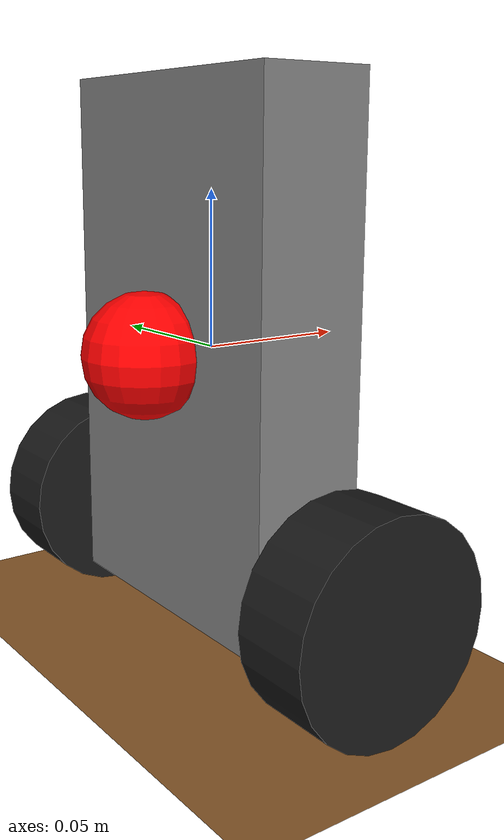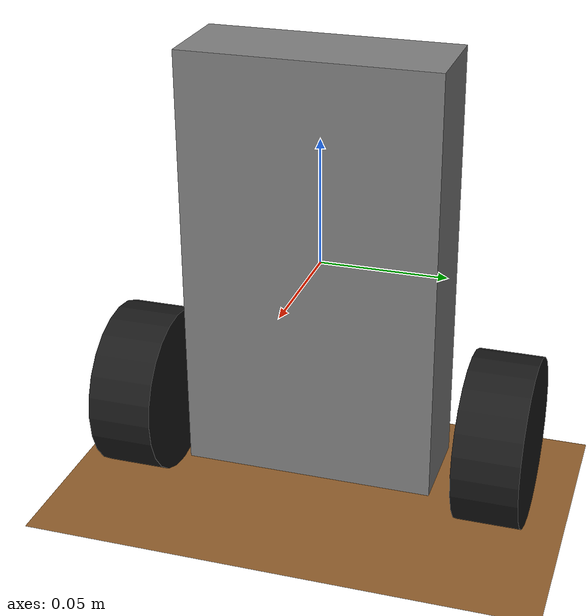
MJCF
<!-- sourced from https://github.com/lachlanhurst/balance-robot-mujoco-sim/blob/main/src/simulation -->

<mujoco model="robot scene">
  <compiler angle="radian"/>
  <option timestep="0.00005"/>

  <include file="mujoco_balancing_robot.xml"/>

  <statistic center="0 0 0.1" extent="0.8"/>

  <visual>
    <headlight diffuse="0.6 0.6 0.6" ambient="0.3 0.3 0.3" specular="0 0 0"/>
    <rgba haze="0.15 0.25 0.35 1"/>
    <global azimuth="120" elevation="-20"/>
  </visual>

  <asset>
    <texture type="skybox" builtin="gradient" rgb1="0.8 0.8 0.8" rgb2="0 0 0" width="512" height="3072"/>

    <texture type="2d" name="wood_floor" builtin="checker"
            rgb1="0.6 0.4 0.2" rgb2="0.55 0.35 0.15"
            markrgb="0.8 0.8 0.8" width="300" height="300"/>
    <material name="groundplane" texture="wood_floor" texuniform="true" texrepeat="5 5" reflectance="0.05"/>

    <texture type="2d" name="wheel_texture" builtin="checker" mark="edge" rgb1="0.0 0.0 0.0" rgb2="0.2 0.2 0.2"
      markrgb="0.3 0.3 0.3" width="300" height="300"/>
    <material name="wheel_material" texture="wheel_texture" texuniform="true" texrepeat="5 5"/>
  </asset>

  <worldbody>
    <light pos="0 0 10.5" dir="-0.5 -0.5 -1" directional="true"/>
    <geom name="floor" size="0 0 0.05" pos="0 0 -0.1" type="plane" material="groundplane"/>
  </worldbody>

  <contact>
    <!--  friction="sliding torsional rolling spinning1 spinning2" -->
    <pair geom1="floor" geom2="l_wheel_geom" friction="1.5 1.0 0.2 0.001 0.001"/>
    <pair geom1="floor" geom2="r_wheel_geom" friction="1.5 1.0 0.2 0.001 0.001"/>
  </contact>

</mujoco>

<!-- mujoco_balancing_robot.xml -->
<!-- sourced from https://github.com/lachlanhurst/balance-robot-mujoco-sim/blob/main/src/simulation -->

<mujoco model="balance">

	<worldbody>
		<body name="robot_body" pos="0 0 -0.1" quat="0.7071 0 0 0.7071">
			<joint name="robot_body_joint" type="free"/>
			<geom size="0.05 0.0185 0.0855" pos="0 0 0.0995" type="box"/>
			<inertial pos="0 0.0 0.057" quat="0.707107 0 0 0.707107" mass="12.0" diaginertia="0.001311 0.0012568 0.000487"/>
			<site name="red_nose" pos="0.0 0.025 0.1" size="0.02" rgba="1 0 0 1"/>
			<body name="l_wheel" pos="-0.074 0 0.034">
				<inertial pos="0 0 0" quat="0.5 0.5 -0.5 0.5" mass="0.032" diaginertia="2.3e-05 1.3e-05 1.3e-05"/>
				<joint name="torso_l_wheel" type="hinge" pos="0 0 0" axis="-1 0 0" actuatorfrcrange="-1000 1000" damping="0.1"/>
				<geom name="l_wheel_geom" size="0.034 0.013" quat="0.707107 0 0.707107 0" type="cylinder" material="wheel_material"/>
			</body>
			<body name="r_wheel" pos="0.074 0 0.034">
				<inertial pos="0 0 0" quat="0.5 0.5 -0.5 0.5" mass="0.032" diaginertia="2.3e-05 1.3e-05 1.3e-05"/>
				<joint name="torso_r_wheel" type="hinge" pos="0 0 0" axis="1 0 0" actuatorfrcrange="-1000 1000" damping="0.1"/>
				<geom name="r_wheel_geom" size="0.034 0.013" quat="0.707107 0 0.707107 0" type="cylinder" material="wheel_material"/>
			</body>
		</body>
	</worldbody>

	<actuator>
		<motor name="motor_left_wheel" joint="torso_l_wheel" gear="0.3" ctrlrange="-100 100"/>
		<motor name="motor_right_wheel" joint="torso_r_wheel" gear="0.3" ctrlrange="-100 100"/>
	</actuator>

	<sensor>
		<!-- Pitch Sensor (since gyro doesn't include integration natively) -->
    	<framexaxis name="body_axis_sensor" objtype="body" objname="robot_body"/>
	</sensor>

</mujoco>
